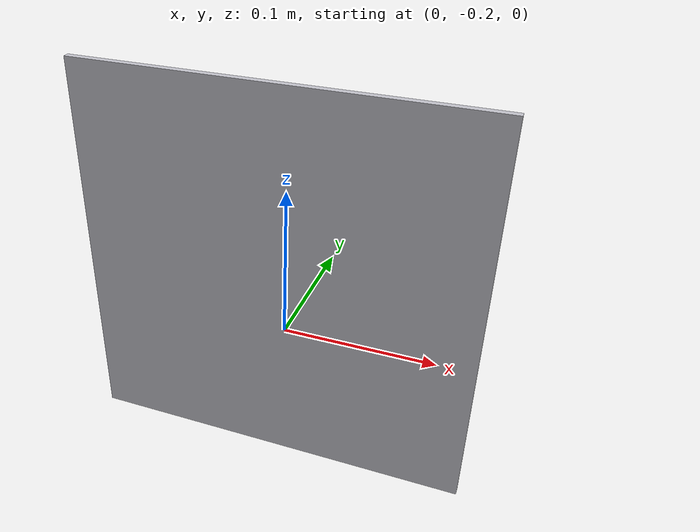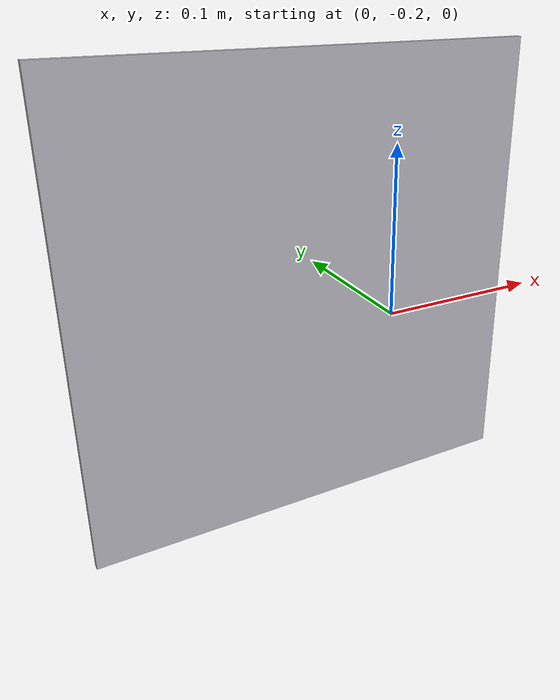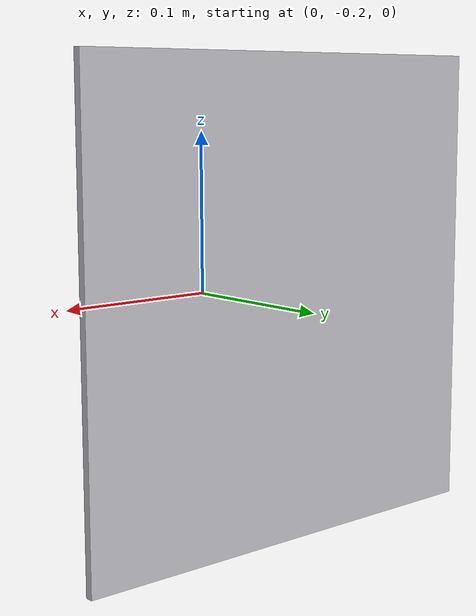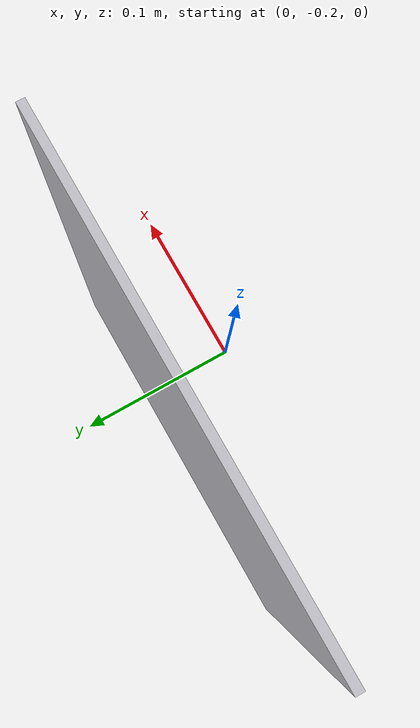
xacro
<?xml version="1.0" ?>
<robot name="assembly_v1" xmlns:xacro="http://www.ros.org/wiki/xacro">

<xacro:include filename="$(find assembly_v1_description)/urdf/materials.xacro" />
<xacro:include filename="$(find assembly_v1_description)/urdf/assembly_v1.trans" />
<xacro:include filename="$(find assembly_v1_description)/urdf/assembly_v1.gazebo" />
<link name="base_link">
  <inertial>
    <origin xyz="-0.028100000000000017 -0.15050000000000005 -0.0027496092316852206" rpy="0 0 0"/>
    <mass value="3.5324999999999998"/>
    <inertia ixx="0.026501" iyy="0.052987" izz="0.026501" ixy="-0.0" iyz="-0.0" ixz="-0.0"/>
  </inertial>
  <visual>
    <origin xyz="0 0 0" rpy="0 0 0"/>
    <geometry>
      <mesh filename="package://assembly_v1_description/meshes/base_link.stl" scale="0.001 0.001 0.001"/>
    </geometry>
    <material name="mdf_board"/>
  </visual>
  <collision>
    <origin xyz="0 0 0" rpy="0 0 0"/>
    <geometry>
      <mesh filename="package://assembly_v1_description/meshes/base_link.stl" scale="0.001 0.001 0.001"/>
    </geometry>
  </collision>
</link>

</robot>

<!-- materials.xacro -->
<robot name="assembly_v1" xmlns:xacro="http://www.ros.org/wiki/xacro" >

<material name="silver_default">
  <color rgba="0.700 0.700 0.700 1.000"/>
</material>
<material name="vetro_finestra">
  <color rgba="1.0 1.0 1.0 1.0"/>
</material>
<material name="rivestimento_a_polvere_nero">
  <color rgba="0.09803921568627451 0.09803921568627451 0.09803921568627451 0.0"/>
</material>
<material name="nylon_66_bianco">
  <color rgba="0.9725490196078431 0.9686274509803922 0.9294117647058824 1.0"/>
</material>
<material name="opaque2476666">
  <color rgba="0.9686274509803922 0.25882352941176473 0.25882352941176473 1.0"/>
</material>
<material name="opaque636363">
  <color rgba="0.25098039215686274 0.25098039215686274 0.25098039215686274 1.0"/>
</material>
<material name="cromo">
  <color rgba="0.7686274509803922 0.7725490196078432 0.7686274509803922 1.0"/>
</material>
<material name="acciaio_satinato">
  <color rgba="0.6274509803921569 0.6274509803921569 0.6274509803921569 1.0"/>
</material>

</robot>

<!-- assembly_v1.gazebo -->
<robot name="assembly_v1" xmlns:xacro="http://www.ros.org/wiki/xacro" >

<xacro:property name="body_color" value="Gazebo/Silver" />

<gazebo>
  <plugin name="control" filename="libgazebo_ros_control.so"/>
</gazebo>
<gazebo reference="base_link">
  <material>${body_color}</material>
  <mu1>0.2</mu1>
  <mu2>0.2</mu2>
  <selfCollide>true</selfCollide>
  <gravity>true</gravity>
</gazebo>

</robot>
